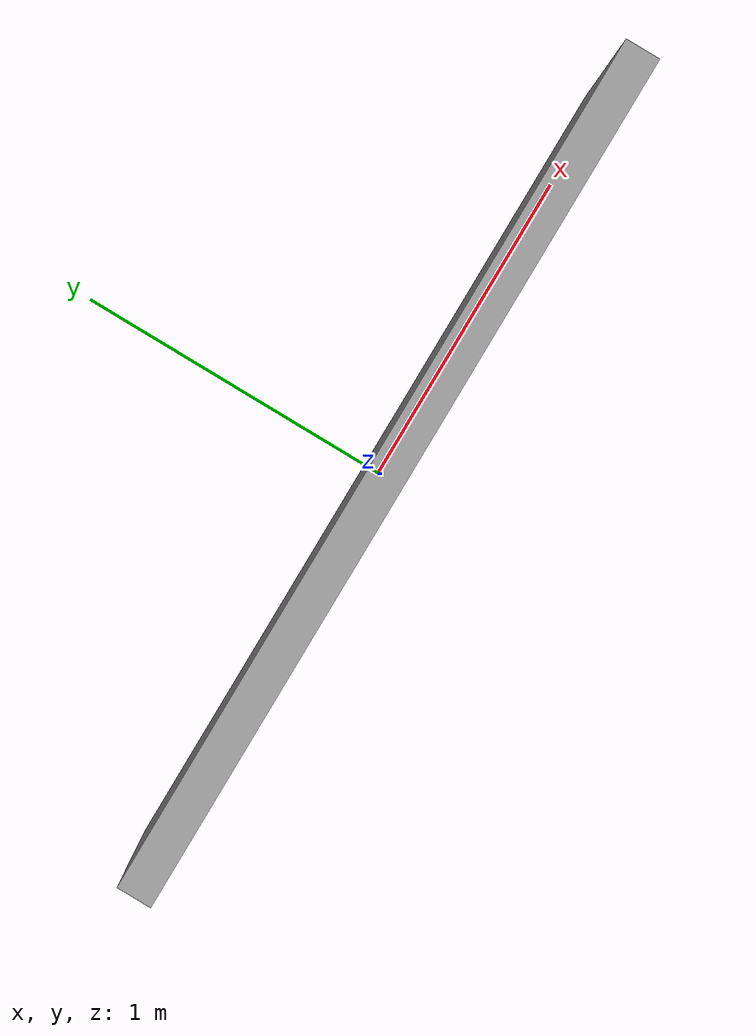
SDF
<?xml version="1.0" ?>
<sdf version="1.5">
  <model name="grey_wall_250">
    <static>true</static>
    <link name="link">
      <pose>0 0 1.4 0 0 0</pose>
      <collision name="collision">
        <geometry>
          <box>
            <size>2.5 0.1 2.2</size>
          </box>
        </geometry>
      </collision>
      <visual name="visual">
        <cast_shadows>false</cast_shadows>
        <geometry>
          <box>
            <size>2.5 0.1 2.2</size>
          </box>
        </geometry>
        <material>
          <script>
            <uri>model://grey_wall_250/materials/scripts</uri>
            <uri>model://grey_wall_250/materials/textures</uri>
            <name>vrc/grey_wall_250</name>
          </script>
        </material>
      </visual>
    </link>
  </model>
</sdf>
